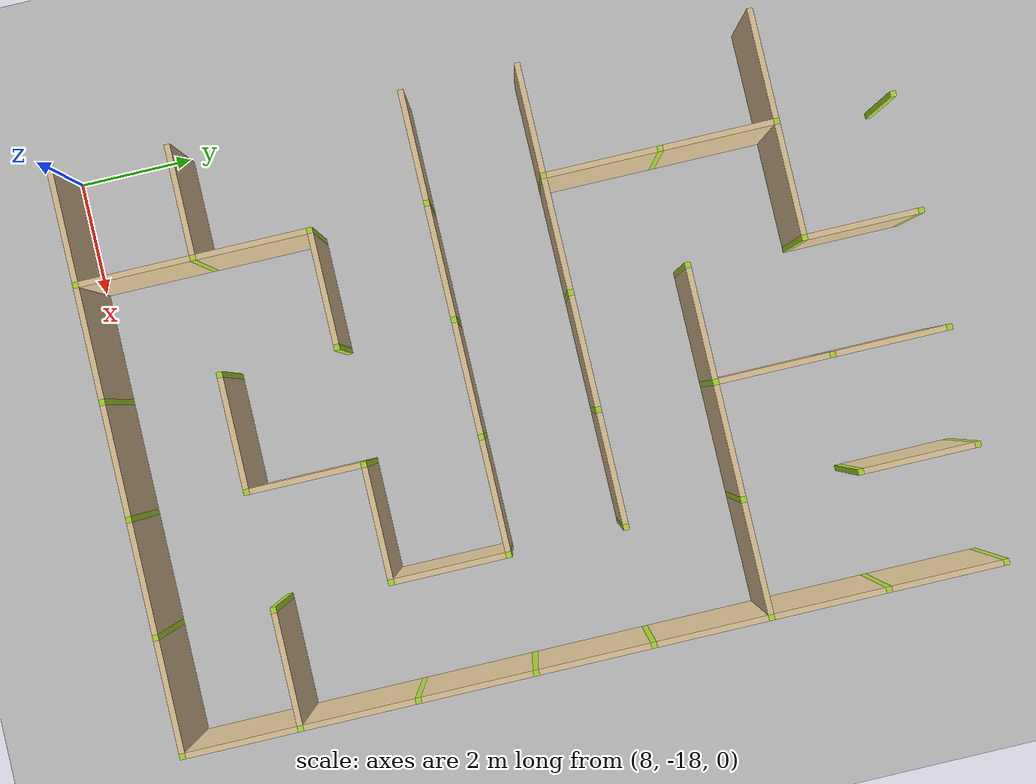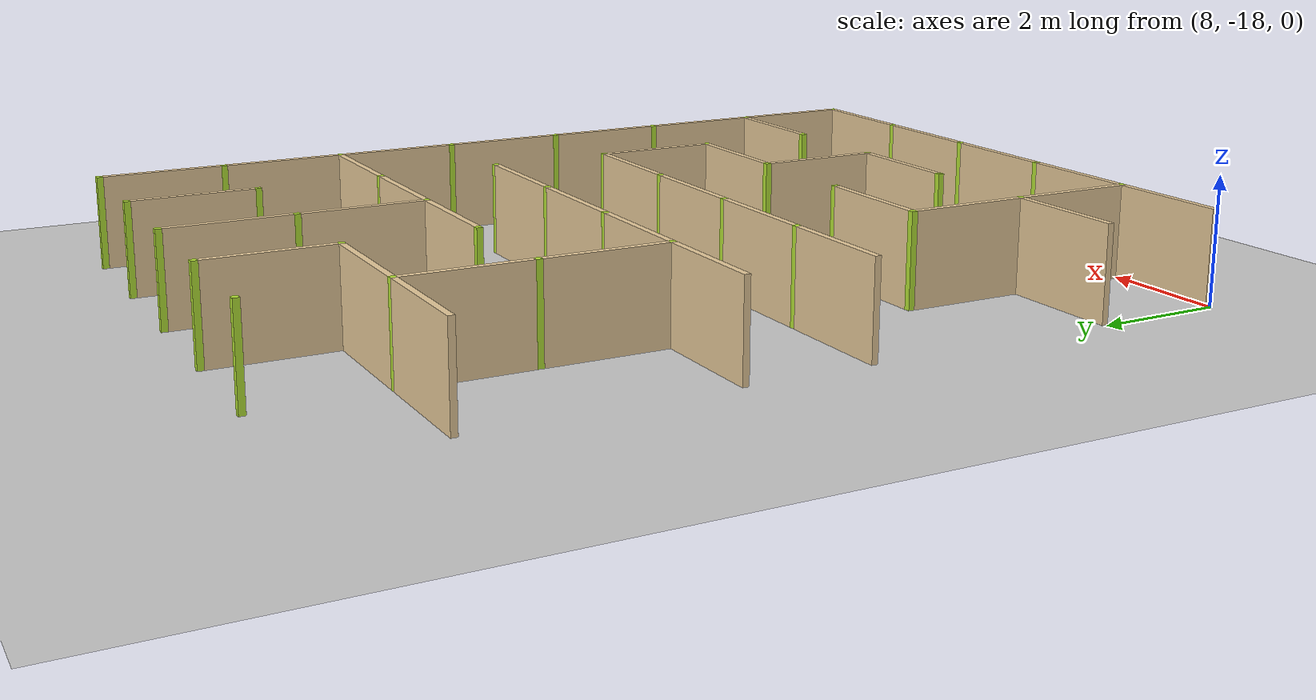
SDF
<sdf version="1.4">
 <world name="maze_world">
  <model name="ground">
   <static>true</static>
   <link name="ground_link">
    <collision name="collision1"><geometry><plane><normal>0 0 1</normal></plane></geometry></collision>
    <visual name="visual1"><geometry><plane><normal>0 0 1</normal><size>100 100</size></plane></geometry></visual>
   </link>
  </model>
  <model name="Untitled">
   <link name="Joint_10_-4">
    <collision name="Wall_2_Collision">
     <geometry><box><size>0.1 0.1 1.5</size></box></geometry>
     <pose>0 0 0.75 0 -0 0</pose>
    </collision>
    <visual name="Wall_2_Visual">
     <pose>0 0 0.75 0 -0 0</pose>
     <geometry><box><size>0.1 0.1 1.5</size></box></geometry>
     <material>
      <script><uri>file://media/materials/scripts/gazebo.material</uri><name>Gazebo/Grey</name></script>
      <ambient>0.721569 0.907843 0.215686 1</ambient>
     </material>
     <meta><layer>0</layer></meta>
    </visual>
    <pose>10 -4 0 0 -0 0</pose>
   </link>
   <link name="Wall_16_12_v">
    <collision name="Wall_0_Collision">
     <geometry><box><size>1.9 0.1 1.5</size></box></geometry>
     <pose>0 0 0.75 0 -0 0</pose>
    </collision>
    <visual name="Wall_0_Visual">
     <pose>0 0 0.75 0 -0 0</pose>
     <geometry><box><size>1.9 0.1 1.5</size></box></geometry>
     <material>
      <script><uri>file://media/materials/scripts/gazebo.material</uri><name>Gazebo/Grey</name></script>
      <ambient>0.921569 0.807843 0.615686 1</ambient>
     </material>
     <meta><layer>0</layer></meta>
    </visual>
    <pose>12 -5.0 0 0 -0 1.5708</pose>
   </link>
   <link name="Joint_12_-4">
    <collision name="Wall_2_Collision">
     <geometry><box><size>0.1 0.1 1.5</size></box></geometry>
     <pose>0 0 0.75 0 -0 0</pose>
    </collision>
    <visual name="Wall_2_Visual">
     <pose>0 0 0.75 0 -0 0</pose>
     <geometry><box><size>0.1 0.1 1.5</size></box></geometry>
     <material>
      <script><uri>file://media/materials/scripts/gazebo.material</uri><name>Gazebo/Grey</name></script>
      <ambient>0.721569 0.907843 0.215686 1</ambient>
     </material>
     <meta><layer>0</layer></meta>
    </visual>
    <pose>12 -4 0 0 -0 0</pose>
   </link>
   <link name="Wall_17_12_v">
    <collision name="Wall_0_Collision">
     <geometry><box><size>1.9 0.1 1.5</size></box></geometry>
     <pose>0 0 0.75 0 -0 0</pose>
    </collision>
    <visual name="Wall_0_Visual">
     <pose>0 0 0.75 0 -0 0</pose>
     <geometry><box><size>1.9 0.1 1.5</size></box></geometry>
     <material>
      <script><uri>file://media/materials/scripts/gazebo.material</uri><name>Gazebo/Grey</name></script>
      <ambient>0.921569 0.807843 0.615686 1</ambient>
     </material>
     <meta><layer>0</layer></meta>
    </visual>
    <pose>14 -5.0 0 0 -0 1.5708</pose>
   </link>
   <link name="Joint_14_-4">
    <collision name="Wall_2_Collision">
     <geometry><box><size>0.1 0.1 1.5</size></box></geometry>
     <pose>0 0 0.75 0 -0 0</pose>
    </collision>
    <visual name="Wall_2_Visual">
     <pose>0 0 0.75 0 -0 0</pose>
     <geometry><box><size>0.1 0.1 1.5</size></box></geometry>
     <material>
      <script><uri>file://media/materials/scripts/gazebo.material</uri><name>Gazebo/Grey</name></script>
      <ambient>0.721569 0.907843 0.215686 1</ambient>
     </material>
     <meta><layer>0</layer></meta>
    </visual>
    <pose>14 -4 0 0 -0 0</pose>
   </link>
   <link name="Wall_18_12_v">
    <collision name="Wall_0_Collision">
     <geometry><box><size>1.9 0.1 1.5</size></box></geometry>
     <pose>0 0 0.75 0 -0 0</pose>
    </collision>
    <visual name="Wall_0_Visual">
     <pose>0 0 0.75 0 -0 0</pose>
     <geometry><box><size>1.9 0.1 1.5</size></box></geometry>
     <material>
      <script><uri>file://media/materials/scripts/gazebo.material</uri><name>Gazebo/Grey</name></script>
      <ambient>0.921569 0.807843 0.615686 1</ambient>
     </material>
     <meta><layer>0</layer></meta>
    </visual>
    <pose>16 -5.0 0 0 -0 1.5708</pose>
   </link>
   <link name="Joint_16_-4">
    <collision name="Wall_2_Collision">
     <geometry><box><size>0.1 0.1 1.5</size></box></geometry>
     <pose>0 0 0.75 0 -0 0</pose>
    </collision>
    <visual name="Wall_2_Visual">
     <pose>0 0 0.75 0 -0 0</pose>
     <geometry><box><size>0.1 0.1 1.5</size></box></geometry>
     <material>
      <script><uri>file://media/materials/scripts/gazebo.material</uri><name>Gazebo/Grey</name></script>
      <ambient>0.721569 0.907843 0.215686 1</ambient>
     </material>
     <meta><layer>0</layer></meta>
    </visual>
    <pose>16 -4 0 0 -0 0</pose>
   </link>
   <link name="Wall_19_12_v">
    <collision name="Wall_0_Collision">
     <geometry><box><size>1.9 0.1 1.5</size></box></geometry>
     <pose>0 0 0.75 0 -0 0</pose>
    </collision>
    <visual name="Wall_0_Visual">
     <pose>0 0 0.75 0 -0 0</pose>
     <geometry><box><size>1.9 0.1 1.5</size></box></geometry>
     <material>
      <script><uri>file://media/materials/scripts/gazebo.material</uri><name>Gazebo/Grey</name></script>
      <ambient>0.921569 0.807843 0.615686 1</ambient>
     </material>
     <meta><layer>0</layer></meta>
    </visual>
    <pose>18 -5.0 0 0 -0 1.5708</pose>
   </link>
   <link name="Joint_18_-4">
    <collision name="Wall_2_Collision">
     <geometry><box><size>0.1 0.1 1.5</size></box></geometry>
     <pose>0 0 0.75 0 -0 0</pose>
    </collision>
    <visual name="Wall_2_Visual">
     <pose>0 0 0.75 0 -0 0</pose>
     <geometry><box><size>0.1 0.1 1.5</size></box></geometry>
     <material>
      <script><uri>file://media/materials/scripts/gazebo.material</uri><name>Gazebo/Grey</name></script>
      <ambient>0.721569 0.907843 0.215686 1</ambient>
     </material>
     <meta><layer>0</layer></meta>
    </visual>
    <pose>18 -4 0 0 -0 0</pose>
   </link>
   <link name="Wall_14_13_h">
    <collision name="Wall_0_Collision">
     <geometry><box><size>1.9 0.1 1.5</size></box></geometry>
     <pose>0 0 0.75 0 -0 0</pose>
    </collision>
    <visual name="Wall_0_Visual">
     <pose>0 0 0.75 0 -0 0</pose>
     <geometry><box><size>1.9 0.1 1.5</size></box></geometry>
     <material>
      <script><uri>file://media/materials/scripts/gazebo.material</uri><name>Gazebo/Grey</name></script>
      <ambient>0.921569 0.807843 0.615686 1</ambient>
     </material>
     <meta><layer>0</layer></meta>
    </visual>
    <pose>9.0 -6 0 0 -0 0</pose>
   </link>
   <link name="Wall_15_13_h">
    <collision name="Wall_0_Collision">
     <geometry><box><size>1.9 0.1 1.5</size></box></geometry>
     <pose>0 0 0.75 0 -0 0</pose>
    </collision>
    <visual name="Wall_0_Visual">
     <pose>0 0 0.75 0 -0 0</pose>
     <geometry><box><size>1.9 0.1 1.5</size></box></geometry>
     <material>
      <script><uri>file://media/materials/scripts/gazebo.material</uri><name>Gazebo/Grey</name></script>
      <ambient>0.921569 0.807843 0.615686 1</ambient>
     </material>
     <meta><layer>0</layer></meta>
    </visual>
    <pose>11.0 -6 0 0 -0 0</pose>
   </link>
   <link name="Wall_15_13_v">
    <collision name="Wall_0_Collision">
     <geometry><box><size>1.9 0.1 1.5</size></box></geometry>
     <pose>0 0 0.75 0 -0 0</pose>
    </collision>
    <visual name="Wall_0_Visual">
     <pose>0 0 0.75 0 -0 0</pose>
     <geometry><box><size>1.9 0.1 1.5</size></box></geometry>
     <material>
      <script><uri>file://media/materials/scripts/gazebo.material</uri><name>Gazebo/Grey</name></script>
      <ambient>0.921569 0.807843 0.615686 1</ambient>
     </material>
     <meta><layer>0</layer></meta>
    </visual>
    <pose>10 -7.0 0 0 -0 1.5708</pose>
   </link>
   <link name="Joint_10_-6">
    <collision name="Wall_2_Collision">
     <geometry><box><size>0.1 0.1 1.5</size></box></geometry>
     <pose>0 0 0.75 0 -0 0</pose>
    </collision>
    <visual name="Wall_2_Visual">
     <pose>0 0 0.75 0 -0 0</pose>
     <geometry><box><size>0.1 0.1 1.5</size></box></geometry>
     <material>
      <script><uri>file://media/materials/scripts/gazebo.material</uri><name>Gazebo/Grey</name></script>
      <ambient>0.721569 0.907843 0.215686 1</ambient>
     </material>
     <meta><layer>0</layer></meta>
    </visual>
    <pose>10 -6 0 0 -0 0</pose>
   </link>
   <link name="Joint_12_-6">
    <collision name="Wall_2_Collision">
     <geometry><box><size>0.1 0.1 1.5</size></box></geometry>
     <pose>0 0 0.75 0 -0 0</pose>
    </collision>
    <visual name="Wall_2_Visual">
     <pose>0 0 0.75 0 -0 0</pose>
     <geometry><box><size>0.1 0.1 1.5</size></box></geometry>
     <material>
      <script><uri>file://media/materials/scripts/gazebo.material</uri><name>Gazebo/Grey</name></script>
      <ambient>0.721569 0.907843 0.215686 1</ambient>
     </material>
     <meta><layer>0</layer></meta>
    </visual>
    <pose>12 -6 0 0 -0 0</pose>
   </link>
   <link name="Wall_17_13_v">
    <collision name="Wall_0_Collision">
     <geometry><box><size>1.9 0.1 1.5</size></box></geometry>
     <pose>0 0 0.75 0 -0 0</pose>
    </collision>
    <visual name="Wall_0_Visual">
     <pose>0 0 0.75 0 -0 0</pose>
     <geometry><box><size>1.9 0.1 1.5</size></box></geometry>
     <material>
      <script><uri>file://media/materials/scripts/gazebo.material</uri><name>Gazebo/Grey</name></script>
      <ambient>0.921569 0.807843 0.615686 1</ambient>
     </material>
     <meta><layer>0</layer></meta>
    </visual>
    <pose>14 -7.0 0 0 -0 1.5708</pose>
   </link>
   <link name="Joint_14_-6">
    <collision name="Wall_2_Collision">
     <geometry><box><size>0.1 0.1 1.5</size></box></geometry>
     <pose>0 0 0.75 0 -0 0</pose>
    </collision>
    <visual name="Wall_2_Visual">
     <pose>0 0 0.75 0 -0 0</pose>
     <geometry><box><size>0.1 0.1 1.5</size></box></geometry>
     <material>
      <script><uri>file://media/materials/scripts/gazebo.material</uri><name>Gazebo/Grey</name></script>
      <ambient>0.721569 0.907843 0.215686 1</ambient>
     </material>
     <meta><layer>0</layer></meta>
    </visual>
    <pose>14 -6 0 0 -0 0</pose>
   </link>
   <link name="Joint_16_-6">
    <collision name="Wall_2_Collision">
     <geometry><box><size>0.1 0.1 1.5</size></box></geometry>
     <pose>0 0 0.75 0 -0 0</pose>
    </collision>
    <visual name="Wall_2_Visual">
     <pose>0 0 0.75 0 -0 0</pose>
     <geometry><box><size>0.1 0.1 1.5</size></box></geometry>
     <material>
      <script><uri>file://media/materials/scripts/gazebo.material</uri><name>Gazebo/Grey</name></script>
      <ambient>0.721569 0.907843 0.215686 1</ambient>
     </material>
     <meta><layer>0</layer></meta>
    </visual>
    <pose>16 -6 0 0 -0 0</pose>
   </link>
   <link name="Wall_19_13_v">
    <collision name="Wall_0_Collision">
     <geometry><box><size>1.9 0.1 1.5</size></box></geometry>
     <pose>0 0 0.75 0 -0 0</pose>
    </collision>
    <visual name="Wall_0_Visual">
     <pose>0 0 0.75 0 -0 0</pose>
     <geometry><box><size>1.9 0.1 1.5</size></box></geometry>
     <material>
      <script><uri>file://media/materials/scripts/gazebo.material</uri><name>Gazebo/Grey</name></script>
      <ambient>0.921569 0.807843 0.615686 1</ambient>
     </material>
     <meta><layer>0</layer></meta>
    </visual>
    <pose>18 -7.0 0 0 -0 1.5708</pose>
   </link>
   <link name="Joint_18_-6">
    <collision name="Wall_2_Collision">
     <geometry><box><size>0.1 0.1 1.5</size></box></geometry>
     <pose>0 0 0.75 0 -0 0</pose>
    </collision>
    <visual name="Wall_2_Visual">
     <pose>0 0 0.75 0 -0 0</pose>
     <geometry><box><size>0.1 0.1 1.5</size></box></geometry>
     <material>
      <script><uri>file://media/materials/scripts/gazebo.material</uri><name>Gazebo/Grey</name></script>
      <ambient>0.721569 0.907843 0.215686 1</ambient>
     </material>
     <meta><layer>0</layer></meta>
    </visual>
    <pose>18 -6 0 0 -0 0</pose>
   </link>
   <link name="Wall_15_14_v">
    <collision name="Wall_0_Collision">
     <geometry><box><size>1.9 0.1 1.5</size></box></geometry>
     <pose>0 0 0.75 0 -0 0</pose>
    </collision>
    <visual name="Wall_0_Visual">
     <pose>0 0 0.75 0 -0 0</pose>
     <geometry><box><size>1.9 0.1 1.5</size></box></geometry>
     <material>
      <script><uri>file://media/materials/scripts/gazebo.material</uri><name>Gazebo/Grey</name></script>
      <ambient>0.921569 0.807843 0.615686 1</ambient>
     </material>
     <meta><layer>0</layer></meta>
    </visual>
    <pose>10 -9.0 0 0 -0 1.5708</pose>
   </link>
   <link name="Joint_10_-8">
    <collision name="Wall_2_Collision">
     <geometry><box><size>0.1 0.1 1.5</size></box></geometry>
     <pose>0 0 0.75 0 -0 0</pose>
    </collision>
    <visual name="Wall_2_Visual">
     <pose>0 0 0.75 0 -0 0</pose>
     <geometry><box><size>0.1 0.1 1.5</size></box></geometry>
     <material>
      <script><uri>file://media/materials/scripts/gazebo.material</uri><name>Gazebo/Grey</name></script>
      <ambient>0.721569 0.907843 0.215686 1</ambient>
     </material>
     <meta><layer>0</layer></meta>
    </visual>
    <pose>10 -8 0 0 -0 0</pose>
   </link>
   <link name="Wall_16_14_h">
    <collision name="Wall_0_Collision">
     <geometry><box><size>1.9 0.1 1.5</size></box></geometry>
     <pose>0 0 0.75 0 -0 0</pose>
    </collision>
    <visual name="Wall_0_Visual">
     <pose>0 0 0.75 0 -0 0</pose>
     <geometry><box><size>1.9 0.1 1.5</size></box></geometry>
     <material>
      <script><uri>file://media/materials/scripts/gazebo.material</uri><name>Gazebo/Grey</name></script>
      <ambient>0.921569 0.807843 0.615686 1</ambient>
     </material>
     <meta><layer>0</layer></meta>
    </visual>
    <pose>13.0 -8 0 0 -0 0</pose>
   </link>
   <link name="Joint_12_-8">
    <collision name="Wall_2_Collision">
     <geometry><box><size>0.1 0.1 1.5</size></box></geometry>
     <pose>0 0 0.75 0 -0 0</pose>
    </collision>
    <visual name="Wall_2_Visual">
     <pose>0 0 0.75 0 -0 0</pose>
     <geometry><box><size>0.1 0.1 1.5</size></box></geometry>
     <material>
      <script><uri>file://media/materials/scripts/gazebo.material</uri><name>Gazebo/Grey</name></script>
      <ambient>0.721569 0.907843 0.215686 1</ambient>
     </material>
     <meta><layer>0</layer></meta>
    </visual>
    <pose>12 -8 0 0 -0 0</pose>
   </link>
   <link name="Wall_17_14_h">
    <collision name="Wall_0_Collision">
     <geometry><box><size>1.9 0.1 1.5</size></box></geometry>
     <pose>0 0 0.75 0 -0 0</pose>
    </collision>
    <visual name="Wall_0_Visual">
     <pose>0 0 0.75 0 -0 0</pose>
     <geometry><box><size>1.9 0.1 1.5</size></box></geometry>
     <material>
      <script><uri>file://media/materials/scripts/gazebo.material</uri><name>Gazebo/Grey</name></script>
      <ambient>0.921569 0.807843 0.615686 1</ambient>
     </material>
     <meta><layer>0</layer></meta>
    </visual>
    <pose>15.0 -8 0 0 -0 0</pose>
   </link>
   <link name="Joint_14_-8">
    <collision name="Wall_2_Collision">
     <geometry><box><size>0.1 0.1 1.5</size></box></geometry>
     <pose>0 0 0.75 0 -0 0</pose>
    </collision>
    <visual name="Wall_2_Visual">
     <pose>0 0 0.75 0 -0 0</pose>
     <geometry><box><size>0.1 0.1 1.5</size></box></geometry>
     <material>
      <script><uri>file://media/materials/scripts/gazebo.material</uri><name>Gazebo/Grey</name></script>
      <ambient>0.721569 0.907843 0.215686 1</ambient>
     </material>
     <meta><layer>0</layer></meta>
    </visual>
    <pose>14 -8 0 0 -0 0</pose>
   </link>
   <link name="Wall_18_14_h">
    <collision name="Wall_0_Collision">
     <geometry><box><size>1.9 0.1 1.5</size></box></geometry>
     <pose>0 0 0.75 0 -0 0</pose>
    </collision>
    <visual name="Wall_0_Visual">
     <pose>0 0 0.75 0 -0 0</pose>
     <geometry><box><size>1.9 0.1 1.5</size></box></geometry>
     <material>
      <script><uri>file://media/materials/scripts/gazebo.material</uri><name>Gazebo/Grey</name></script>
      <ambient>0.921569 0.807843 0.615686 1</ambient>
     </material>
     <meta><layer>0</layer></meta>
    </visual>
    <pose>17.0 -8 0 0 -0 0</pose>
   </link>
   <link name="Joint_16_-8">
    <collision name="Wall_2_Collision">
     <geometry><box><size>0.1 0.1 1.5</size></box></geometry>
     <pose>0 0 0.75 0 -0 0</pose>
    </collision>
    <visual name="Wall_2_Visual">
     <pose>0 0 0.75 0 -0 0</pose>
     <geometry><box><size>0.1 0.1 1.5</size></box></geometry>
     <material>
      <script><uri>file://media/materials/scripts/gazebo.material</uri><name>Gazebo/Grey</name></script>
      <ambient>0.721569 0.907843 0.215686 1</ambient>
     </material>
     <meta><layer>0</layer></meta>
    </visual>
    <pose>16 -8 0 0 -0 0</pose>
   </link>
   <link name="Wall_19_14_v">
    <collision name="Wall_0_Collision">
     <geometry><box><size>1.9 0.1 1.5</size></box></geometry>
     <pose>0 0 0.75 0 -0 0</pose>
    </collision>
    <visual name="Wall_0_Visual">
     <pose>0 0 0.75 0 -0 0</pose>
     <geometry><box><size>1.9 0.1 1.5</size></box></geometry>
     <material>
      <script><uri>file://media/materials/scripts/gazebo.material</uri><name>Gazebo/Grey</name></script>
      <ambient>0.921569 0.807843 0.615686 1</ambient>
     </material>
     <meta><layer>0</layer></meta>
    </visual>
    <pose>18 -9.0 0 0 -0 1.5708</pose>
   </link>
   <link name="Joint_18_-8">
    <collision name="Wall_2_Collision">
     <geometry><box><size>0.1 0.1 1.5</size></box></geometry>
     <pose>0 0 0.75 0 -0 0</pose>
    </collision>
    <visual name="Wall_2_Visual">
     <pose>0 0 0.75 0 -0 0</pose>
     <geometry><box><size>0.1 0.1 1.5</size></box></geometry>
     <material>
      <script><uri>file://media/materials/scripts/gazebo.material</uri><name>Gazebo/Grey</name></script>
      <ambient>0.721569 0.907843 0.215686 1</ambient>
     </material>
     <meta><layer>0</layer></meta>
    </visual>
    <pose>18 -8 0 0 -0 0</pose>
   </link>
   <link name="Wall_14_15_h">
    <collision name="Wall_0_Collision">
     <geometry><box><size>1.9 0.1 1.5</size></box></geometry>
     <pose>0 0 0.75 0 -0 0</pose>
    </collision>
    <visual name="Wall_0_Visual">
     <pose>0 0 0.75 0 -0 0</pose>
     <geometry><box><size>1.9 0.1 1.5</size></box></geometry>
     <material>
      <script><uri>file://media/materials/scripts/gazebo.material</uri><name>Gazebo/Grey</name></script>
      <ambient>0.921569 0.807843 0.615686 1</ambient>
     </material>
     <meta><layer>0</layer></meta>
    </visual>
    <pose>9.0 -10 0 0 -0 0</pose>
   </link>
   <link name="Wall_15_15_h">
    <collision name="Wall_0_Collision">
     <geometry><box><size>1.9 0.1 1.5</size></box></geometry>
     <pose>0 0 0.75 0 -0 0</pose>
    </collision>
    <visual name="Wall_0_Visual">
     <pose>0 0 0.75 0 -0 0</pose>
     <geometry><box><size>1.9 0.1 1.5</size></box></geometry>
     <material>
      <script><uri>file://media/materials/scripts/gazebo.material</uri><name>Gazebo/Grey</name></script>
      <ambient>0.921569 0.807843 0.615686 1</ambient>
     </material>
     <meta><layer>0</layer></meta>
    </visual>
    <pose>11.0 -10 0 0 -0 0</pose>
   </link>
   <link name="Joint_10_-10">
    <collision name="Wall_2_Collision">
     <geometry><box><size>0.1 0.1 1.5</size></box></geometry>
     <pose>0 0 0.75 0 -0 0</pose>
    </collision>
    <visual name="Wall_2_Visual">
     <pose>0 0 0.75 0 -0 0</pose>
     <geometry><box><size>0.1 0.1 1.5</size></box></geometry>
     <material>
      <script><uri>file://media/materials/scripts/gazebo.material</uri><name>Gazebo/Grey</name></script>
      <ambient>0.721569 0.907843 0.215686 1</ambient>
     </material>
     <meta><layer>0</layer></meta>
    </visual>
    <pose>10 -10 0 0 -0 0</pose>
   </link>
   <link name="Wall_16_15_h">
    <collision name="Wall_0_Collision">
     <geometry><box><size>1.9 0.1 1.5</size></box></geometry>
     <pose>0 0 0.75 0 -0 0</pose>
    </collision>
    <visual name="Wall_0_Visual">
     <pose>0 0 0.75 0 -0 0</pose>
     <geometry><box><size>1.9 0.1 1.5</size></box></geometry>
     <material>
      <script><uri>file://media/materials/scripts/gazebo.material</uri><name>Gazebo/Grey</name></script>
      <ambient>0.921569 0.807843 0.615686 1</ambient>
     </material>
     <meta><layer>0</layer></meta>
    </visual>
    <pose>13.0 -10 0 0 -0 0</pose>
   </link>
   <link name="Joint_12_-10">
    <collision name="Wall_2_Collision">
     <geometry><box><size>0.1 0.1 1.5</size></box></geometry>
     <pose>0 0 0.75 0 -0 0</pose>
    </collision>
    <visual name="Wall_2_Visual">
     <pose>0 0 0.75 0 -0 0</pose>
     <geometry><box><size>0.1 0.1 1.5</size></box></geometry>
     <material>
      <script><uri>file://media/materials/scripts/gazebo.material</uri><name>Gazebo/Grey</name></script>
      <ambient>0.721569 0.907843 0.215686 1</ambient>
     </material>
     <meta><layer>0</layer></meta>
    </visual>
    <pose>12 -10 0 0 -0 0</pose>
   </link>
   <link name="Wall_17_15_h">
    <collision name="Wall_0_Collision">
     <geometry><box><size>1.9 0.1 1.5</size></box></geometry>
     <pose>0 0 0.75 0 -0 0</pose>
    </collision>
    <visual name="Wall_0_Visual">
     <pose>0 0 0.75 0 -0 0</pose>
     <geometry><box><size>1.9 0.1 1.5</size></box></geometry>
     <material>
      <script><uri>file://media/materials/scripts/gazebo.material</uri><name>Gazebo/Grey</name></script>
      <ambient>0.921569 0.807843 0.615686 1</ambient>
     </material>
     <meta><layer>0</layer></meta>
    </visual>
    <pose>15.0 -10 0 0 -0 0</pose>
   </link>
   <link name="Joint_14_-10">
    <collision name="Wall_2_Collision">
     <geometry><box><size>0.1 0.1 1.5</size></box></geometry>
     <pose>0 0 0.75 0 -0 0</pose>
    </collision>
    <visual name="Wall_2_Visual">
     <pose>0 0 0.75 0 -0 0</pose>
     <geometry><box><size>0.1 0.1 1.5</size></box></geometry>
     <material>
      <script><uri>file://media/materials/scripts/gazebo.material</uri><name>Gazebo/Grey</name></script>
      <ambient>0.721569 0.907843 0.215686 1</ambient>
     </material>
     <meta><layer>0</layer></meta>
    </visual>
    <pose>14 -10 0 0 -0 0</pose>
   </link>
   <link name="Joint_16_-10">
    <collision name="Wall_2_Collision">
     <geometry><box><size>0.1 0.1 1.5</size></box></geometry>
     <pose>0 0 0.75 0 -0 0</pose>
    </collision>
    <visual name="Wall_2_Visual">
     <pose>0 0 0.75 0 -0 0</pose>
     <geometry><box><size>0.1 0.1 1.5</size></box></geometry>
     <material>
      <script><uri>file://media/materials/scripts/gazebo.material</uri><name>Gazebo/Grey</name></script>
      <ambient>0.721569 0.907843 0.215686 1</ambient>
     </material>
     <meta><layer>0</layer></meta>
    </visual>
    <pose>16 -10 0 0 -0 0</pose>
   </link>
   <link name="Wall_19_15_v">
    <collision name="Wall_0_Collision">
     <geometry><box><size>1.9 0.1 1.5</size></box></geometry>
     <pose>0 0 0.75 0 -0 0</pose>
    </collision>
    <visual name="Wall_0_Visual">
     <pose>0 0 0.75 0 -0 0</pose>
     <geometry><box><size>1.9 0.1 1.5</size></box></geometry>
     <material>
      <script><uri>file://media/materials/scripts/gazebo.material</uri><name>Gazebo/Grey</name></script>
      <ambient>0.921569 0.807843 0.615686 1</ambient>
     </material>
     <meta><layer>0</layer></meta>
    </visual>
    <pose>18 -11.0 0 0 -0 1.5708</pose>
   </link>
   <link name="Joint_18_-10">
    <collision name="Wall_2_Collision">
     <geometry><box><size>0.1 0.1 1.5</size></box></geometry>
     <pose>0 0 0.75 0 -0 0</pose>
    </collision>
    <visual name="Wall_2_Visual">
     <pose>0 0 0.75 0 -0 0</pose>
     <geometry><box><size>0.1 0.1 1.5</size></box></geometry>
     <material>
      <script><uri>file://media/materials/scripts/gazebo.material</uri><name>Gazebo/Grey</name></script>
      <ambient>0.721569 0.907843 0.215686 1</ambient>
     </material>
     <meta><layer>0</layer></meta>
    </visual>
    <pose>18 -10 0 0 -0 0</pose>
   </link>
   <link name="Wall_14_16_h">
    <collision name="Wall_0_Collision">
     <geometry><box><size>1.9 0.1 1.5</size></box></geometry>
     <pose>0 0 0.75 0 -0 0</pose>
    </collision>
    <visual name="Wall_0_Visual">
     <pose>0 0 0.75 0 -0 0</pose>
     <geometry><box><size>1.9 0.1 1.5</size></box></geometry>
     <material>
      <script><uri>file://media/materials/scripts/gazebo.material</uri><name>Gazebo/Grey</name></script>
      <ambient>0.921569 0.807843 0.615686 1</ambient>
     </material>
     <meta><layer>0</layer></meta>
    </visual>
    <pose>9.0 -12 0 0 -0 0</pose>
   </link>
   <link name="Wall_15_16_h">
    <collision name="Wall_0_Collision">
     <geometry><box><size>1.9 0.1 1.5</size></box></geometry>
     <pose>0 0 0.75 0 -0 0</pose>
    </collision>
    <visual name="Wall_0_Visual">
     <pose>0 0 0.75 0 -0 0</pose>
     <geometry><box><size>1.9 0.1 1.5</size></box></geometry>
     <material>
      <script><uri>file://media/materials/scripts/gazebo.material</uri><name>Gazebo/Grey</name></script>
      <ambient>0.921569 0.807843 0.615686 1</ambient>
     </material>
     <meta><layer>0</layer></meta>
    </visual>
    <pose>11.0 -12 0 0 -0 0</pose>
   </link>
   <link name="Joint_10_-12">
    <collision name="Wall_2_Collision">
     <geometry><box><size>0.1 0.1 1.5</size></box></geometry>
     <pose>0 0 0.75 0 -0 0</pose>
    </collision>
    <visual name="Wall_2_Visual">
     <pose>0 0 0.75 0 -0 0</pose>
     <geometry><box><size>0.1 0.1 1.5</size></box></geometry>
     <material>
      <script><uri>file://media/materials/scripts/gazebo.material</uri><name>Gazebo/Grey</name></script>
      <ambient>0.721569 0.907843 0.215686 1</ambient>
     </material>
     <meta><layer>0</layer></meta>
    </visual>
    <pose>10 -12 0 0 -0 0</pose>
   </link>
   <link name="Wall_16_16_h">
    <collision name="Wall_0_Collision">
     <geometry><box><size>1.9 0.1 1.5</size></box></geometry>
     <pose>0 0 0.75 0 -0 0</pose>
    </collision>
    <visual name="Wall_0_Visual">
     <pose>0 0 0.75 0 -0 0</pose>
     <geometry><box><size>1.9 0.1 1.5</size></box></geometry>
     <material>
      <script><uri>file://media/materials/scripts/gazebo.material</uri><name>Gazebo/Grey</name></script>
      <ambient>0.921569 0.807843 0.615686 1</ambient>
     </material>
     <meta><layer>0</layer></meta>
    </visual>
    <pose>13.0 -12 0 0 -0 0</pose>
   </link>
   <link name="Joint_12_-12">
    <collision name="Wall_2_Collision">
     <geometry><box><size>0.1 0.1 1.5</size></box></geometry>
     <pose>0 0 0.75 0 -0 0</pose>
    </collision>
    <visual name="Wall_2_Visual">
     <pose>0 0 0.75 0 -0 0</pose>
     <geometry><box><size>0.1 0.1 1.5</size></box></geometry>
     <material>
      <script><uri>file://media/materials/scripts/gazebo.material</uri><name>Gazebo/Grey</name></script>
      <ambient>0.721569 0.907843 0.215686 1</ambient>
     </material>
     <meta><layer>0</layer></meta>
    </visual>
    <pose>12 -12 0 0 -0 0</pose>
   </link>
   <link name="Wall_17_16_h">
    <collision name="Wall_0_Collision">
     <geometry><box><size>1.9 0.1 1.5</size></box></geometry>
     <pose>0 0 0.75 0 -0 0</pose>
    </collision>
    <visual name="Wall_0_Visual">
     <pose>0 0 0.75 0 -0 0</pose>
     <geometry><box><size>1.9 0.1 1.5</size></box></geometry>
     <material>
      <script><uri>file://media/materials/scripts/gazebo.material</uri><name>Gazebo/Grey</name></script>
      <ambient>0.921569 0.807843 0.615686 1</ambient>
     </material>
     <meta><layer>0</layer></meta>
    </visual>
    <pose>15.0 -12 0 0 -0 0</pose>
   </link>
   <link name="Joint_14_-12">
    <collision name="Wall_2_Collision">
     <geometry><box><size>0.1 0.1 1.5</size></box></geometry>
     <pose>0 0 0.75 0 -0 0</pose>
    </collision>
    <visual name="Wall_2_Visual">
     <pose>0 0 0.75 0 -0 0</pose>
     <geometry><box><size>0.1 0.1 1.5</size></box></geometry>
     <material>
      <script><uri>file://media/materials/scripts/gazebo.material</uri><name>Gazebo/Grey</name></script>
      <ambient>0.721569 0.907843 0.215686 1</ambient>
     </material>
     <meta><layer>0</layer></meta>
    </visual>
    <pose>14 -12 0 0 -0 0</pose>
   </link>
   <link name="Wall_18_16_v">
    <collision name="Wall_0_Collision">
     <geometry><box><size>1.9 0.1 1.5</size></box></geometry>
     <pose>0 0 0.75 0 -0 0</pose>
    </collision>
    <visual name="Wall_0_Visual">
     <pose>0 0 0.75 0 -0 0</pose>
     <geometry><box><size>1.9 0.1 1.5</size></box></geometry>
     <material>
      <script><uri>file://media/materials/scripts/gazebo.material</uri><name>Gazebo/Grey</name></script>
      <ambient>0.921569 0.807843 0.615686 1</ambient>
     </material>
     <meta><layer>0</layer></meta>
    </visual>
    <pose>16 -13.0 0 0 -0 1.5708</pose>
   </link>
   <link name="Joint_16_-12">
    <collision name="Wall_2_Collision">
     <geometry><box><size>0.1 0.1 1.5</size></box></geometry>
     <pose>0 0 0.75 0 -0 0</pose>
    </collision>
    <visual name="Wall_2_Visual">
     <pose>0 0 0.75 0 -0 0</pose>
     <geometry><box><size>0.1 0.1 1.5</size></box></geometry>
     <material>
      <script><uri>file://media/materials/scripts/gazebo.material</uri><name>Gazebo/Grey</name></script>
      <ambient>0.721569 0.907843 0.215686 1</ambient>
     </material>
     <meta><layer>0</layer></meta>
    </visual>
    <pose>16 -12 0 0 -0 0</pose>
   </link>
   <link name="Wall_19_16_v">
    <collision name="Wall_0_Collision">
     <geometry><box><size>1.9 0.1 1.5</size></box></geometry>
     <pose>0 0 0.75 0 -0 0</pose>
    </collision>
    <visual name="Wall_0_Visual">
     <pose>0 0 0.75 0 -0 0</pose>
     <geometry><box><size>1.9 0.1 1.5</size></box></geometry>
     <material>
      <script><uri>file://media/materials/scripts/gazebo.material</uri><name>Gazebo/Grey</name></script>
      <ambient>0.921569 0.807843 0.615686 1</ambient>
     </material>
     <meta><layer>0</layer></meta>
    </visual>
    <pose>18 -13.0 0 0 -0 1.5708</pose>
   </link>
   <link name="Joint_18_-12">
    <collision name="Wall_2_Collision">
     <geometry><box><size>0.1 0.1 1.5</size></box></geometry>
     <pose>0 0 0.75 0 -0 0</pose>
    </collision>
    <visual name="Wall_2_Visual">
     <pose>0 0 0.75 0 -0 0</pose>
     <geometry><box><size>0.1 0.1 1.5</size></box></geometry>
     <material>
      <script><uri>file://media/materials/scripts/gazebo.material</uri><name>Gazebo/Grey</name></script>
      <ambient>0.721569 0.907843 0.215686 1</ambient>
     </material>
     <meta><layer>0</layer></meta>
    </visual>
    <pose>18 -12 0 0 -0 0</pose>
   </link>
   <link name="Wall_15_17_h">
    <collision name="Wall_0_Collision">
     <geometry><box><size>1.9 0.1 1.5</size></box></geometry>
     <pose>0 0 0.75 0 -0 0</pose>
    </collision>
    <visual name="Wall_0_Visual">
     <pose>0 0 0.75 0 -0 0</pose>
     <geometry><box><size>1.9 0.1 1.5</size></box></geometry>
     <material>
      <script><uri>file://media/materials/scripts/gazebo.material</uri><name>Gazebo/Grey</name></script>
      <ambient>0.921569 0.807843 0.615686 1</ambient>
     </material>
     <meta><layer>0</layer></meta>
    </visual>
    <pose>11.0 -14 0 0 -0 0</pose>
   </link>
   <link name="Wall_15_17_v">
    <collision name="Wall_0_Collision">
     <geometry><box><size>1.9 0.1 1.5</size></box></geometry>
     <pose>0 0 0.75 0 -0 0</pose>
    </collision>
    <visual name="Wall_0_Visual">
     <pose>0 0 0.75 0 -0 0</pose>
     <geometry><box><size>1.9 0.1 1.5</size></box></geometry>
     <material>
      <script><uri>file://media/materials/scripts/gazebo.material</uri><name>Gazebo/Grey</name></script>
      <ambient>0.921569 0.807843 0.615686 1</ambient>
     </material>
     <meta><layer>0</layer></meta>
    </visual>
    <pose>10 -15.0 0 0 -0 1.5708</pose>
   </link>
   <link name="Joint_10_-14">
    <collision name="Wall_2_Collision">
     <geometry><box><size>0.1 0.1 1.5</size></box></geometry>
     <pose>0 0 0.75 0 -0 0</pose>
    </collision>
    <visual name="Wall_2_Visual">
     <pose>0 0 0.75 0 -0 0</pose>
     <geometry><box><size>0.1 0.1 1.5</size></box></geometry>
     <material>
      <script><uri>file://media/materials/scripts/gazebo.material</uri><name>Gazebo/Grey</name></script>
      <ambient>0.721569 0.907843 0.215686 1</ambient>
     </material>
     <meta><layer>0</layer></meta>
    </visual>
    <pose>10 -14 0 0 -0 0</pose>
   </link>
   <link name="Joint_12_-14">
    <collision name="Wall_2_Collision">
     <geometry><box><size>0.1 0.1 1.5</size></box></geometry>
     <pose>0 0 0.75 0 -0 0</pose>
    </collision>
    <visual name="Wall_2_Visual">
     <pose>0 0 0.75 0 -0 0</pose>
     <geometry><box><size>0.1 0.1 1.5</size></box></geometry>
     <material>
      <script><uri>file://media/materials/scripts/gazebo.material</uri><name>Gazebo/Grey</name></script>
      <ambient>0.721569 0.907843 0.215686 1</ambient>
     </material>
     <meta><layer>0</layer></meta>
    </visual>
    <pose>12 -14 0 0 -0 0</pose>
   </link>
   <link name="Wall_17_17_h">
    <collision name="Wall_0_Collision">
     <geometry><box><size>1.9 0.1 1.5</size></box></geometry>
     <pose>0 0 0.75 0 -0 0</pose>
    </collision>
    <visual name="Wall_0_Visual">
     <pose>0 0 0.75 0 -0 0</pose>
     <geometry><box><size>1.9 0.1 1.5</size></box></geometry>
     <material>
      <script><uri>file://media/materials/scripts/gazebo.material</uri><name>Gazebo/Grey</name></script>
      <ambient>0.921569 0.807843 0.615686 1</ambient>
     </material>
     <meta><layer>0</layer></meta>
    </visual>
    <pose>15.0 -14 0 0 -0 0</pose>
   </link>
   <link name="Wall_17_17_v">
    <collision name="Wall_0_Collision">
     <geometry><box><size>1.9 0.1 1.5</size></box></geometry>
     <pose>0 0 0.75 0 -0 0</pose>
    </collision>
    <visual name="Wall_0_Visual">
     <pose>0 0 0.75 0 -0 0</pose>
     <geometry><box><size>1.9 0.1 1.5</size></box></geometry>
     <material>
      <script><uri>file://media/materials/scripts/gazebo.material</uri><name>Gazebo/Grey</name></script>
      <ambient>0.921569 0.807843 0.615686 1</ambient>
     </material>
     <meta><layer>0</layer></meta>
    </visual>
    <pose>14 -15.0 0 0 -0 1.5708</pose>
   </link>
   <link name="Joint_14_-14">
    <collision name="Wall_2_Collision">
     <geometry><box><size>0.1 0.1 1.5</size></box></geometry>
     <pose>0 0 0.75 0 -0 0</pose>
    </collision>
    <visual name="Wall_2_Visual">
     <pose>0 0 0.75 0 -0 0</pose>
     <geometry><box><size>0.1 0.1 1.5</size></box></geometry>
     <material>
      <script><uri>file://media/materials/scripts/gazebo.material</uri><name>Gazebo/Grey</name></script>
      <ambient>0.721569 0.907843 0.215686 1</ambient>
     </material>
     <meta><layer>0</layer></meta>
    </visual>
    <pose>14 -14 0 0 -0 0</pose>
   </link>
   <link name="Joint_16_-14">
    <collision name="Wall_2_Collision">
     <geometry><box><size>0.1 0.1 1.5</size></box></geometry>
     <pose>0 0 0.75 0 -0 0</pose>
    </collision>
    <visual name="Wall_2_Visual">
     <pose>0 0 0.75 0 -0 0</pose>
     <geometry><box><size>0.1 0.1 1.5</size></box></geometry>
     <material>
      <script><uri>file://media/materials/scripts/gazebo.material</uri><name>Gazebo/Grey</name></script>
      <ambient>0.721569 0.907843 0.215686 1</ambient>
     </material>
     <meta><layer>0</layer></meta>
    </visual>
    <pose>16 -14 0 0 -0 0</pose>
   </link>
   <link name="Wall_19_17_v">
    <collision name="Wall_0_Collision">
     <geometry><box><size>1.9 0.1 1.5</size></box></geometry>
     <pose>0 0 0.75 0 -0 0</pose>
    </collision>
    <visual name="Wall_0_Visual">
     <pose>0 0 0.75 0 -0 0</pose>
     <geometry><box><size>1.9 0.1 1.5</size></box></geometry>
     <material>
      <script><uri>file://media/materials/scripts/gazebo.material</uri><name>Gazebo/Grey</name></script>
      <ambient>0.921569 0.807843 0.615686 1</ambient>
     </material>
     <meta><layer>0</layer></meta>
    </visual>
    <pose>18 -15.0 0 0 -0 1.5708</pose>
   </link>
   <link name="Joint_18_-14">
    <collision name="Wall_2_Collision">
     <geometry><box><size>0.1 0.1 1.5</size></box></geometry>
     <pose>0 0 0.75 0 -0 0</pose>
    </collision>
    <visual name="Wall_2_Visual">
     <pose>0 0 0.75 0 -0 0</pose>
     <geometry><box><size>0.1 0.1 1.5</size></box></geometry>
     <material>
      <script><uri>file://media/materials/scripts/gazebo.material</uri><name>Gazebo/Grey</name></script>
      <ambient>0.721569 0.907843 0.215686 1</ambient>
     </material>
     <meta><layer>0</layer></meta>
    </visual>
    <pose>18 -14 0 0 -0 0</pose>
   </link>
   <link name="Wall_14_18_h">
    <collision name="Wall_0_Collision">
     <geometry><box><size>1.9 0.1 1.5</size></box></geometry>
     <pose>0 0 0.75 0 -0 0</pose>
    </collision>
    <visual name="Wall_0_Visual">
     <pose>0 0 0.75 0 -0 0</pose>
     <geometry><box><size>1.9 0.1 1.5</size></box></geometry>
     <material>
      <script><uri>file://media/materials/scripts/gazebo.material</uri><name>Gazebo/Grey</name></script>
      <ambient>0.921569 0.807843 0.615686 1</ambient>
     </material>
     <meta><layer>0</layer></meta>
    </visual>
    <pose>9.0 -16 0 0 -0 0</pose>
   </link>
   <link name="Wall_14_19_h">
    <collision name="Wall_0_Collision">
     <geometry><box><size>1.9 0.1 1.5</size></box></geometry>
     <pose>0 0 0.75 0 -0 0</pose>
    </collision>
    <visual name="Wall_0_Visual">
     <pose>0 0 0.75 0 -0 0</pose>
     <geometry><box><size>1.9 0.1 1.5</size></box></geometry>
     <material>
      <script><uri>file://media/materials/scripts/gazebo.material</uri><name>Gazebo/Grey</name></script>
      <ambient>0.921569 0.807843 0.615686 1</ambient>
     </material>
     <meta><layer>0</layer></meta>
    </visual>
    <pose>9.0 -18 0 0 -0 0</pose>
   </link>
   <link name="Wall_15_18_v">
    <collision name="Wall_0_Collision">
     <geometry><box><size>1.9 0.1 1.5</size></box></geometry>
     <pose>0 0 0.75 0 -0 0</pose>
    </collision>
    <visual name="Wall_0_Visual">
     <pose>0 0 0.75 0 -0 0</pose>
     <geometry><box><size>1.9 0.1 1.5</size></box></geometry>
     <material>
      <script><uri>file://media/materials/scripts/gazebo.material</uri><name>Gazebo/Grey</name></script>
      <ambient>0.921569 0.807843 0.615686 1</ambient>
     </material>
     <meta><layer>0</layer></meta>
    </visual>
    <pose>10 -17.0 0 0 -0 1.5708</pose>
   </link>
   <link name="Joint_10_-16">
    <collision name="Wall_2_Collision">
     <geometry><box><size>0.1 0.1 1.5</size></box></geometry>
     <pose>0 0 0.75 0 -0 0</pose>
    </collision>
    <visual name="Wall_2_Visual">
     <pose>0 0 0.75 0 -0 0</pose>
     <geometry><box><size>0.1 0.1 1.5</size></box></geometry>
     <material>
      <script><uri>file://media/materials/scripts/gazebo.material</uri><name>Gazebo/Grey</name></script>
      <ambient>0.721569 0.907843 0.215686 1</ambient>
     </material>
     <meta><layer>0</layer></meta>
    </visual>
    <pose>10 -16 0 0 -0 0</pose>
   </link>
   <link name="Wall_15_19_h">
    <collision name="Wall_0_Collision">
     <geometry><box><size>1.9 0.1 1.5</size></box></geometry>
     <pose>0 0 0.75 0 -0 0</pose>
    </collision>
    <visual name="Wall_0_Visual">
     <pose>0 0 0.75 0 -0 0</pose>
     <geometry><box><size>1.9 0.1 1.5</size></box></geometry>
     <material>
      <script><uri>file://media/materials/scripts/gazebo.material</uri><name>Gazebo/Grey</name></script>
      <ambient>0.921569 0.807843 0.615686 1</ambient>
     </material>
     <meta><layer>0</layer></meta>
    </visual>
    <pose>11.0 -18 0 0 -0 0</pose>
   </link>
   <link name="Joint_10_-18">
    <collision name="Wall_2_Collision">
     <geometry><box><size>0.1 0.1 1.5</size></box></geometry>
     <pose>0 0 0.75 0 -0 0</pose>
    </collision>
    <visual name="Wall_2_Visual">
     <pose>0 0 0.75 0 -0 0</pose>
     <geometry><box><size>0.1 0.1 1.5</size></box></geometry>
     <material>
      <script><uri>file://media/materials/scripts/gazebo.material</uri><name>Gazebo/Grey</name></script>
      <ambient>0.721569 0.907843 0.215686 1</ambient>
     </material>
     <meta><layer>0</layer></meta>
    </visual>
    <pose>10 -18 0 0 -0 0</pose>
   </link>
   <link name="Wall_16_18_h">
    <collision name="Wall_0_Collision">
     <geometry><box><size>1.9 0.1 1.5</size></box></geometry>
     <pose>0 0 0.75 0 -0 0</pose>
    </collision>
    <visual name="Wall_0_Visual">
     <pose>0 0 0.75 0 -0 0</pose>
     <geometry><box><size>1.9 0.1 1.5</size></box></geometry>
     <material>
      <script><uri>file://media/materials/scripts/gazebo.material</uri><name>Gazebo/Grey</name></script>
      <ambient>0.921569 0.807843 0.615686 1</ambient>
     </material>
     <meta><layer>0</layer></meta>
    </visual>
    <pose>13.0 -16 0 0 -0 0</pose>
   </link>
   <link name="Joint_12_-16">
    <collision name="Wall_2_Collision">
     <geometry><box><size>0.1 0.1 1.5</size></box></geometry>
     <pose>0 0 0.75 0 -0 0</pose>
    </collision>
    <visual name="Wall_2_Visual">
     <pose>0 0 0.75 0 -0 0</pose>
     <geometry><box><size>0.1 0.1 1.5</size></box></geometry>
     <material>
      <script><uri>file://media/materials/scripts/gazebo.material</uri><name>Gazebo/Grey</name></script>
      <ambient>0.721569 0.907843 0.215686 1</ambient>
     </material>
     <meta><layer>0</layer></meta>
    </visual>
    <pose>12 -16 0 0 -0 0</pose>
   </link>
   <link name="Wall_16_19_h">
    <collision name="Wall_0_Collision">
     <geometry><box><size>1.9 0.1 1.5</size></box></geometry>
     <pose>0 0 0.75 0 -0 0</pose>
    </collision>
    <visual name="Wall_0_Visual">
     <pose>0 0 0.75 0 -0 0</pose>
     <geometry><box><size>1.9 0.1 1.5</size></box></geometry>
     <material>
      <script><uri>file://media/materials/scripts/gazebo.material</uri><name>Gazebo/Grey</name></script>
      <ambient>0.921569 0.807843 0.615686 1</ambient>
     </material>
     <meta><layer>0</layer></meta>
    </visual>
    <pose>13.0 -18 0 0 -0 0</pose>
   </link>
   <link name="Joint_12_-18">
    <collision name="Wall_2_Collision">
     <geometry><box><size>0.1 0.1 1.5</size></box></geometry>
     <pose>0 0 0.75 0 -0 0</pose>
    </collision>
    <visual name="Wall_2_Visual">
     <pose>0 0 0.75 0 -0 0</pose>
     <geometry><box><size>0.1 0.1 1.5</size></box></geometry>
     <material>
      <script><uri>file://media/materials/scripts/gazebo.material</uri><name>Gazebo/Grey</name></script>
      <ambient>0.721569 0.907843 0.215686 1</ambient>
     </material>
     <meta><layer>0</layer></meta>
    </visual>
    <pose>12 -18 0 0 -0 0</pose>
   </link>
   <link name="Joint_14_-16">
    <collision name="Wall_2_Collision">
     <geometry><box><size>0.1 0.1 1.5</size></box></geometry>
     <pose>0 0 0.75 0 -0 0</pose>
    </collision>
    <visual name="Wall_2_Visual">
     <pose>0 0 0.75 0 -0 0</pose>
     <geometry><box><size>0.1 0.1 1.5</size></box></geometry>
     <material>
      <script><uri>file://media/materials/scripts/gazebo.material</uri><name>Gazebo/Grey</name></script>
      <ambient>0.721569 0.907843 0.215686 1</ambient>
     </material>
     <meta><layer>0</layer></meta>
    </visual>
    <pose>14 -16 0 0 -0 0</pose>
   </link>
   <link name="Wall_17_19_h">
    <collision name="Wall_0_Collision">
     <geometry><box><size>1.9 0.1 1.5</size></box></geometry>
     <pose>0 0 0.75 0 -0 0</pose>
    </collision>
    <visual name="Wall_0_Visual">
     <pose>0 0 0.75 0 -0 0</pose>
     <geometry><box><size>1.9 0.1 1.5</size></box></geometry>
     <material>
      <script><uri>file://media/materials/scripts/gazebo.material</uri><name>Gazebo/Grey</name></script>
      <ambient>0.921569 0.807843 0.615686 1</ambient>
     </material>
     <meta><layer>0</layer></meta>
    </visual>
    <pose>15.0 -18 0 0 -0 0</pose>
   </link>
   <link name="Joint_14_-18">
    <collision name="Wall_2_Collision">
     <geometry><box><size>0.1 0.1 1.5</size></box></geometry>
     <pose>0 0 0.75 0 -0 0</pose>
    </collision>
    <visual name="Wall_2_Visual">
     <pose>0 0 0.75 0 -0 0</pose>
     <geometry><box><size>0.1 0.1 1.5</size></box></geometry>
     <material>
      <script><uri>file://media/materials/scripts/gazebo.material</uri><name>Gazebo/Grey</name></script>
      <ambient>0.721569 0.907843 0.215686 1</ambient>
     </material>
     <meta><layer>0</layer></meta>
    </visual>
    <pose>14 -18 0 0 -0 0</pose>
   </link>
   <link name="Wall_18_18_h">
    <collision name="Wall_0_Collision">
     <geometry><box><size>1.9 0.1 1.5</size></box></geometry>
     <pose>0 0 0.75 0 -0 0</pose>
    </collision>
    <visual name="Wall_0_Visual">
     <pose>0 0 0.75 0 -0 0</pose>
     <geometry><box><size>1.9 0.1 1.5</size></box></geometry>
     <material>
      <script><uri>file://media/materials/scripts/gazebo.material</uri><name>Gazebo/Grey</name></script>
      <ambient>0.921569 0.807843 0.615686 1</ambient>
     </material>
     <meta><layer>0</layer></meta>
    </visual>
    <pose>17.0 -16 0 0 -0 0</pose>
   </link>
   <link name="Joint_16_-16">
    <collision name="Wall_2_Collision">
     <geometry><box><size>0.1 0.1 1.5</size></box></geometry>
     <pose>0 0 0.75 0 -0 0</pose>
    </collision>
    <visual name="Wall_2_Visual">
     <pose>0 0 0.75 0 -0 0</pose>
     <geometry><box><size>0.1 0.1 1.5</size></box></geometry>
     <material>
      <script><uri>file://media/materials/scripts/gazebo.material</uri><name>Gazebo/Grey</name></script>
      <ambient>0.721569 0.907843 0.215686 1</ambient>
     </material>
     <meta><layer>0</layer></meta>
    </visual>
    <pose>16 -16 0 0 -0 0</pose>
   </link>
   <link name="Wall_18_19_h">
    <collision name="Wall_0_Collision">
     <geometry><box><size>1.9 0.1 1.5</size></box></geometry>
     <pose>0 0 0.75 0 -0 0</pose>
    </collision>
    <visual name="Wall_0_Visual">
     <pose>0 0 0.75 0 -0 0</pose>
     <geometry><box><size>1.9 0.1 1.5</size></box></geometry>
     <material>
      <script><uri>file://media/materials/scripts/gazebo.material</uri><name>Gazebo/Grey</name></script>
      <ambient>0.921569 0.807843 0.615686 1</ambient>
     </material>
     <meta><layer>0</layer></meta>
    </visual>
    <pose>17.0 -18 0 0 -0 0</pose>
   </link>
   <link name="Joint_16_-18">
    <collision name="Wall_2_Collision">
     <geometry><box><size>0.1 0.1 1.5</size></box></geometry>
     <pose>0 0 0.75 0 -0 0</pose>
    </collision>
    <visual name="Wall_2_Visual">
     <pose>0 0 0.75 0 -0 0</pose>
     <geometry><box><size>0.1 0.1 1.5</size></box></geometry>
     <material>
      <script><uri>file://media/materials/scripts/gazebo.material</uri><name>Gazebo/Grey</name></script>
      <ambient>0.721569 0.907843 0.215686 1</ambient>
     </material>
     <meta><layer>0</layer></meta>
    </visual>
    <pose>16 -18 0 0 -0 0</pose>
   </link>
   <link name="Wall_19_18_v">
    <collision name="Wall_0_Collision">
     <geometry><box><size>1.9 0.1 1.5</size></box></geometry>
     <pose>0 0 0.75 0 -0 0</pose>
    </collision>
    <visual name="Wall_0_Visual">
     <pose>0 0 0.75 0 -0 0</pose>
     <geometry><box><size>1.9 0.1 1.5</size></box></geometry>
     <material>
      <script><uri>file://media/materials/scripts/gazebo.material</uri><name>Gazebo/Grey</name></script>
      <ambient>0.921569 0.807843 0.615686 1</ambient>
     </material>
     <meta><layer>0</layer></meta>
    </visual>
    <pose>18 -17.0 0 0 -0 1.5708</pose>
   </link>
   <link name="Joint_18_-16">
    <collision name="Wall_2_Collision">
     <geometry><box><size>0.1 0.1 1.5</size></box></geometry>
     <pose>0 0 0.75 0 -0 0</pose>
    </collision>
    <visual name="Wall_2_Visual">
     <pose>0 0 0.75 0 -0 0</pose>
     <geometry><box><size>0.1 0.1 1.5</size></box></geometry>
     <material>
      <script><uri>file://media/materials/scripts/gazebo.material</uri><name>Gazebo/Grey</name></script>
      <ambient>0.721569 0.907843 0.215686 1</ambient>
     </material>
     <meta><layer>0</layer></meta>
    </visual>
    <pose>18 -16 0 0 -0 0</pose>
   </link>
   <link name="Joint_18_-18">
    <collision name="Wall_2_Collision">
     <geometry><box><size>0.1 0.1 1.5</size></box></geometry>
     <pose>0 0 0.75 0 -0 0</pose>
    </collision>
    <visual name="Wall_2_Visual">
     <pose>0 0 0.75 0 -0 0</pose>
     <geometry><box><size>0.1 0.1 1.5</size></box></geometry>
     <material>
      <script><uri>file://media/materials/scripts/gazebo.material</uri><name>Gazebo/Grey</name></script>
      <ambient>0.721569 0.907843 0.215686 1</ambient>
     </material>
     <meta><layer>0</layer></meta>
    </visual>
    <pose>18 -18 0 0 -0 0</pose>
   </link>
   <static>1</static>
  </model>
 </world>
</sdf>
